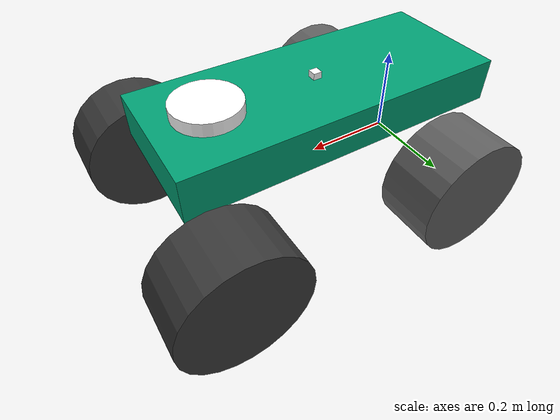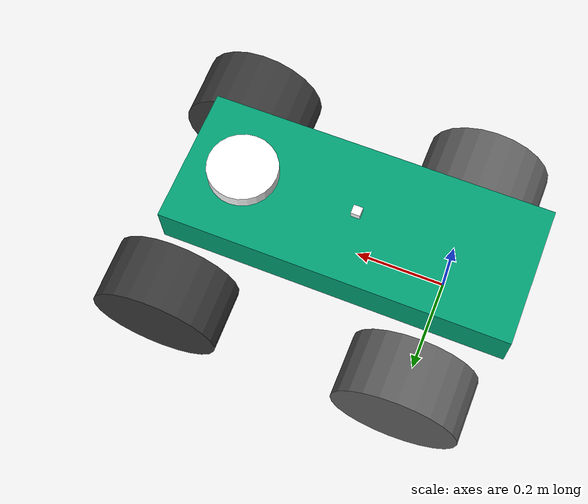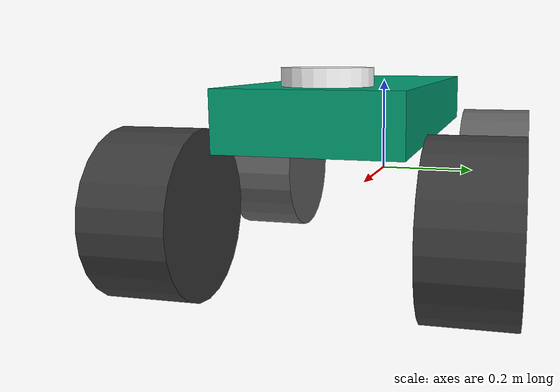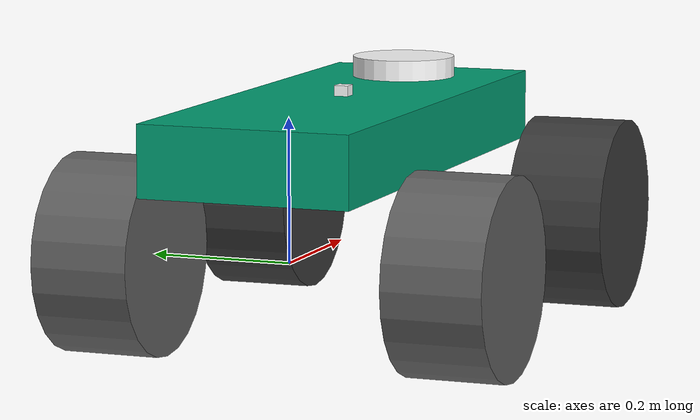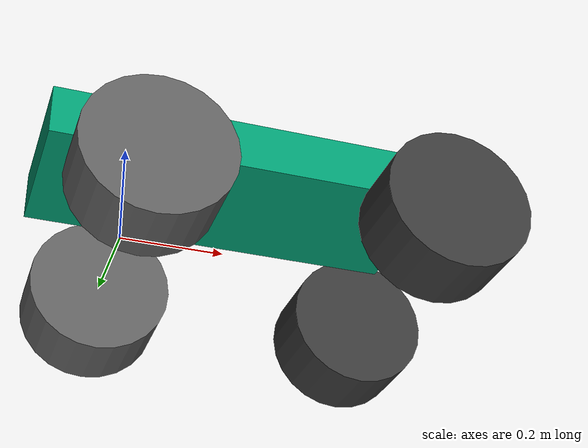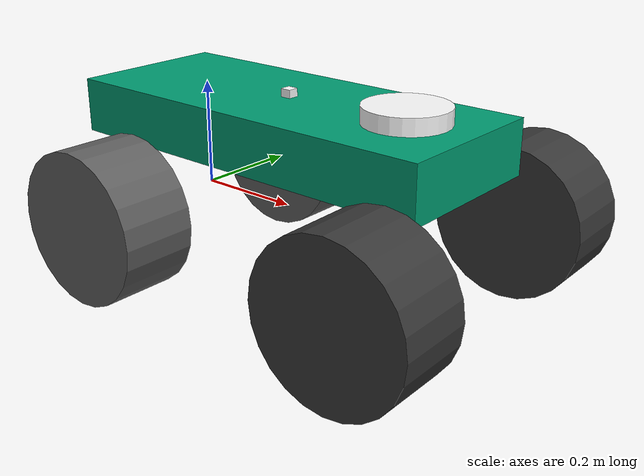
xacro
<?xml version="1.0"?>
<robot xmlns:xacro="http://www.ros.org/wiki/xacro">

    <!--设置宏参数-->
    <xacro:property name="body_mass" value="25.0" />
    <xacro:property name="body_width" value="0.3" />
    <xacro:property name="body_length" value="0.10" />
    <xacro:property name="body_depth" value="0.75" />

    <xacro:property name="wheel_radius" value="0.14" />
    <xacro:property name="wheel_thickness" value="0.14" />
    <xacro:property name="wheel_mass" value="3.0" />
    <xacro:property name="steering_mass" value="0.01" />

    <!-- BASE 设置基点 -->
    <link name="base_footprint">
            <origin xyz="0 0 0" rpy="0 0 0" />
    </link>

    <link name="base_link">
    </link>
    <joint name="base_joint" type="fixed">
        <parent link="base_footprint" />
        <child link="base_link" />
        <origin xyz="0.0 0.0 0.0" rpy="0 0 0" />
    </joint>

    <!-- 设置小车底盘结构 -->
    <link name="chassis_link">
        <inertial>              <!-- 设置转动惯量 -->
            <origin xyz="0.0374140021041951 -0.000373005187591258 -0.0771282894414029" rpy="0 0 0" />
            <mass value="24.73" />
            <inertia ixx="${body_mass/12 * (body_width*body_width + body_length*body_length)}"
                ixy="0" ixz="0"
                iyy="${body_mass/12 * (body_length*body_length + body_depth*body_depth)}" iyz="0"
                izz="${body_mass/12 * (body_width*body_width + body_depth*body_depth)}" />
        </inertial>
        <visual>                <!-- 可视化 -->
            <origin xyz="0 0 0" rpy="0 0 0" />
            <geometry>
                <box size="0.75 0.3 0.10" />
            </geometry>
        </visual>
        <collision>             <!-- 设置碰撞体积 -->
            <origin xyz="0.07 0 -0.05" rpy="0 0 0" />
            <geometry>
                <box size="0.75 0.3 0.10" />
            </geometry>
        </collision>
    </link>
    <joint name="chassis_joint" type="fixed">                   <!-- 将底盘link连接到base_link -->
        <parent link="base_link" />
        <child link="chassis_link" />
        <origin xyz="0.2078 0.0 0.1555" rpy="0 0 0" />
    </joint>

    <!-- FRONT LEFT WHEEL 左前轮转向机构 -->
    <link name="fr_left_steer_link">
        <inertial>          <!-- 设置左前轮转向机构的转动惯量 -->
            <origin xyz="-0.0002776492198312 0.0163539773588368 4.97346169803237E-09" rpy="0 0 0" />
            <mass value="${steering_mass}" />
            <inertia
                ixx="${steering_mass/12*(3*wheel_radius*wheel_radius + wheel_thickness*wheel_thickness)}"
                ixy="0" ixz="0"
                iyy="${steering_mass/12*(3*wheel_radius*wheel_radius + wheel_thickness*wheel_thickness)}"
                iyz="0" izz="${steering_mass/2 * wheel_radius*wheel_radius}" />
        </inertial>
    </link>
    <joint name="fr_left_steer_joint" type="revolute">              <!-- 将左前轮转向机构连接到底盘上 -->
        <origin xyz="0.34058 0.24619 -0.1535" rpy="0 0 0" />        <!-- xyz三个方向上的偏移 -->
        <parent link="chassis_link" />
        <child link="fr_left_steer_link" />
        <axis xyz="0 0 1" />                                        <!-- 表示转向机构只可绕着Z轴旋转 -->
        <limit upper="0.6" lower="-0.6" effort="-1.0" velocity="-1.0" />
    </joint>
    <link name="fr_left_wheel_link">                                <!-- 左前轮link -->
        <inertial>                                                  <!-- 左前轮转动惯量 -->
            <origin xyz="-3.5837499634539E-10 4.97346158701006E-09 -0.016356334080185" rpy="0 0 0" />
            <mass value="${wheel_mass}" />
            <inertia
                ixx="${wheel_mass/12*(3*wheel_radius*wheel_radius + wheel_thickness*wheel_thickness)}"
                ixy="0" ixz="0"
                iyy="${wheel_mass/12*(3*wheel_radius*wheel_radius + wheel_thickness*wheel_thickness)}"
                iyz="0" izz="${wheel_mass/2 * wheel_radius*wheel_radius}" />
        </inertial>
        <visual>                                                    <!-- 左前轮可视化 -->
            <origin xyz="0 0 0" rpy="0 0 0" />
            <geometry>
                <cylinder radius="${wheel_radius}" length="${wheel_thickness}" />
            </geometry>
            <material name="">
                <color rgba="0.223529411764706 0.223529411764706 0.223529411764706 1" />
            </material>
        </visual>
        <collision>
            <origin xyz="0 0 0" rpy="0 0 0" />
            <geometry>
                <cylinder radius="${wheel_radius}" length="${wheel_thickness}" />
            </geometry>
        </collision>
    </link>
    <joint name="fr_left_wheel_joint" type="continuous">            <!-- 将左前轮连接到左前轮转向机构上 -->
        <origin xyz="0 0 0" rpy="1.5708 0 0.016976" />
        <parent link="fr_left_steer_link" />
        <child link="fr_left_wheel_link" />
        <axis xyz="0 0 -1" />
        <dynamics friction="0.8" damping="0.5" />
        <limit lower="-3.14159" upper="3.14159" effort="200" velocity="-1" />
    </joint>

    <!-- FRONT RIGHT WHEEL  右前轮转向机构 -->
    <link name="fr_right_steer_link">
        <inertial>
            <origin xyz="0.000274981985673328 -0.0163540222836661 -3.24802407192237E-11" rpy="0 0 0" />
            <mass value="${steering_mass}" />
            <inertia
                ixx="${steering_mass/12*(3*wheel_radius*wheel_radius + wheel_thickness*wheel_thickness)}"
                ixy="0" ixz="0"
                iyy="${steering_mass/12*(3*wheel_radius*wheel_radius + wheel_thickness*wheel_thickness)}"
                iyz="0" izz="${steering_mass/2 * wheel_radius*wheel_radius}" />
        </inertial>
    </link>
    <joint name="fr_right_steer_joint" type="revolute">
        <origin xyz="0.34219 -0.24619 -0.1535" rpy="0 0 0" />
        <parent link="chassis_link" />
        <child link="fr_right_steer_link" />
        <axis xyz="0 0 1" />
        <limit upper="0.6" lower="-0.6" effort="-1.0" velocity="-1.0" />
    </joint>
    <link name="fr_right_wheel_link">
        <inertial>
            <origin xyz="0.00027498198567355 3.24801296969213E-11 -0.0163540222836661" rpy="0 0 0" />
            <mass value="${wheel_mass}" />
            <inertia
                ixx="${wheel_mass/12*(3*wheel_radius*wheel_radius + wheel_thickness*wheel_thickness)}"
                ixy="0" ixz="0"
                iyy="${wheel_mass/12*(3*wheel_radius*wheel_radius + wheel_thickness*wheel_thickness)}"
                iyz="0" izz="${wheel_mass/2 * wheel_radius*wheel_radius}" />
        </inertial>
        <visual>
            <origin xyz="0 0 0" rpy="0 0 0" />
            <geometry>
                <cylinder radius="${wheel_radius}" length="${wheel_thickness}" />
            </geometry>
            <material name="">
                <color rgba="0.223529411764706 0.223529411764706 0.223529411764706 1" />
            </material>
        </visual>
        <collision>
            <origin xyz="0 0 0" rpy="0 0 0" />
            <geometry>
                <cylinder radius="${wheel_radius}" length="${wheel_thickness}" />
            </geometry>
        </collision>
    </link>
    <joint name="fr_right_wheel_joint" type="continuous">
        <origin xyz="0 0 0" rpy="-1.5708 0 0.016976" />
        <parent link="fr_right_steer_link" />
        <child link="fr_right_wheel_link" />
        <axis xyz="0 0 1" />
        <dynamics friction="0.8" damping="0.5" />
        <limit lower="-3.14159" upper="3.14159" effort="200" velocity="-1" />
    </joint>

    <!-- REAR LEFT WHEEL  左后轮 -->
    <link name="re_left_wheel_link">
        <inertial>
            <origin xyz="1.245E-09 1.7252E-06 -0.010284" rpy="0 0 0" />
            <mass value="${wheel_mass}" />
            <inertia
                ixx="${wheel_mass/12*(3*wheel_radius*wheel_radius + wheel_thickness*wheel_thickness)}"
                ixy="0" ixz="0"
                iyy="${wheel_mass/12*(3*wheel_radius*wheel_radius + wheel_thickness*wheel_thickness)}"
                iyz="0" izz="${wheel_mass/2 * wheel_radius*wheel_radius}" />
        </inertial>
        <visual>
            <origin xyz="0 0 0" rpy="0 0 0" />
            <geometry>
                <cylinder radius="${wheel_radius}" length="${wheel_thickness}" />
            </geometry>
            <material name="">
                <color rgba="0.37647 0.37647 0.37647 1" />
            </material>
        </visual>
        <collision>
            <origin xyz="0 0 0" rpy="0 0 0" />
            <geometry>
                <cylinder radius="${wheel_radius}" length="${wheel_thickness}" />
            </geometry>
        </collision>
    </link>
    <joint name="re_left_wheel_joint" type="continuous">
        <origin xyz="-0.2078 0.252 -0.158" rpy="1.5708 0 0" />
        <parent link="chassis_link" />
        <child link="re_left_wheel_link" />
        <axis xyz="0 0 -1" />
        <dynamics friction="0.8" damping="0.5" />
        <limit lower="-3.14159" upper="3.14159" effort="70" velocity="-1" />

    </joint>

    <!-- REAR RIGHT WHEEL  右后轮 -->
    <link name="re_right_wheel_link">
        <inertial>
            <origin xyz="0 0 0" rpy="0 0 0" />
            <mass value="${wheel_mass}" />
            <inertia
                ixx="${wheel_mass/12*(3*wheel_radius*wheel_radius + wheel_thickness*wheel_thickness)}"
                ixy="0" ixz="0"
                iyy="${wheel_mass/12*(3*wheel_radius*wheel_radius + wheel_thickness*wheel_thickness)}"
                iyz="0" izz="${wheel_mass/2 * wheel_radius*wheel_radius}" />
        </inertial>
        <visual>
            <origin xyz="0 0 0" rpy="0 0 0" />
            <geometry>
                <cylinder radius="${wheel_radius}" length="${wheel_thickness}" />
            </geometry>
            <material name="">
                <color rgba="0.37647 0.37647 0.37647 1" />
            </material>
        </visual>
        <collision>
            <origin xyz="0 0 0" rpy="0 0 0" />
            <geometry>
                <cylinder radius="${wheel_radius}" length="${wheel_thickness}" />
            </geometry>
        </collision>
    </link>
    <joint name="re_right_wheel_joint" type="continuous">
        <origin xyz="-0.2078 -0.252 -0.158" rpy="-1.5708 0 0" />
        <parent link="chassis_link" />
        <child link="re_right_wheel_link" />
        <axis xyz="0 0 1" />

        <dynamics friction="0.8" damping="0.5" />
        <limit lower="-3.14159" upper="3.14159" effort="70" velocity="-1" />
    </joint>

<!-- LASER 雷达 这里只设置了外观，没有设置功能-->
    <link name="laser_link">
    <visual>
        <geometry>
        <cylinder length="0.03" radius="0.075"/>
        </geometry>
        <origin rpy="0 0 0" xyz="0 0 -0.01"/>
        <material name="rgba(255,255,255,1)">
        <color rgba="1 1 1 1"/>
        </material>
    </visual>
    </link>

    <joint name="laser_joint" type="fixed">
        <parent link="chassis_link"/>
        <child link="laser_link"/>
        <origin rpy="0 0 0" xyz="0.25 0 0.075"/>
    </joint>

<!-- IMU -->
    <link name="imu_link">
        <visual>
            <geometry>
        <box size="0.02 0.02 0.02"/>
            </geometry>
            <origin rpy="0 0 0" xyz="0 0 -0.01"/>
            <material name="rgba(255,255,255,1)">
            <color rgba="1 1 1 1"/>
            </material>
        </visual>
    </link>

    <joint name="imu_joint" type="fixed">
        <parent link="chassis_link"/>
        <child link="imu_link"/>
        <origin rpy="0 0 0" xyz="0 0 0.065"/>
    </joint>

</robot>
